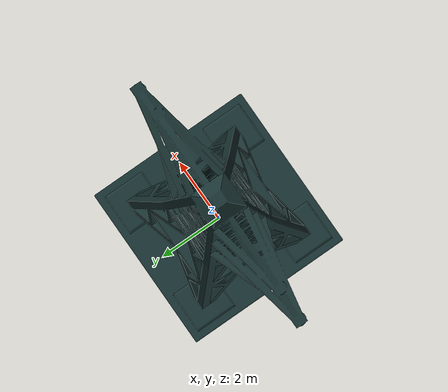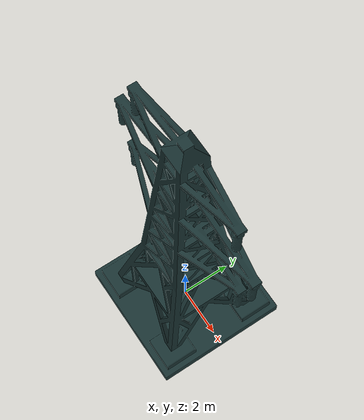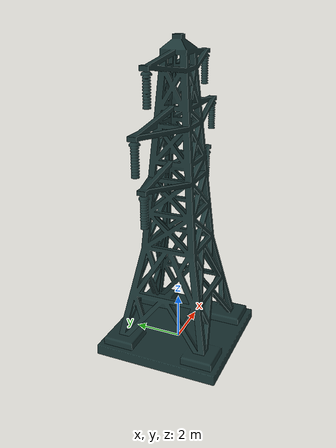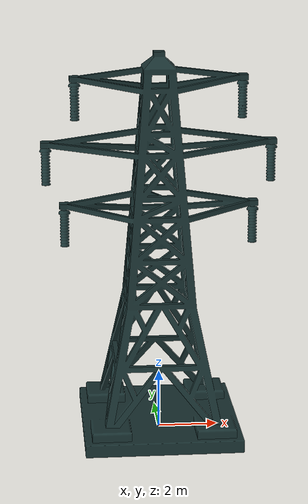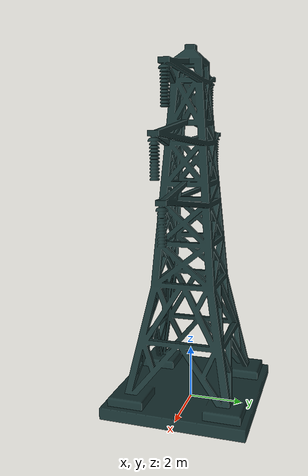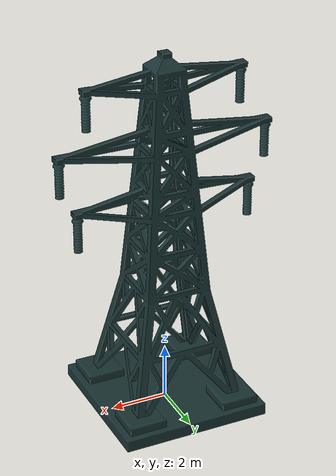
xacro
<?xml version="1.0"?>
<robot name="building2">

    <link name="base_link">
      <visual>
        <origin rpy="0 0 0" xyz="0 0 0"/>
        <geometry>
          <mesh filename="package://aerial_robot_model/urdf/other_objects/tower2.stl" scale="0.005 0.005 0.005"/>
        </geometry>
        <material name="gray">
          <color rgba="0.1 0.2 0.2 1"/>
        </material>
      </visual>
    </link>
</robot>
